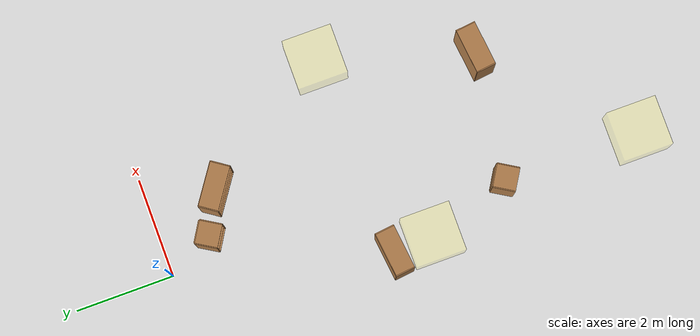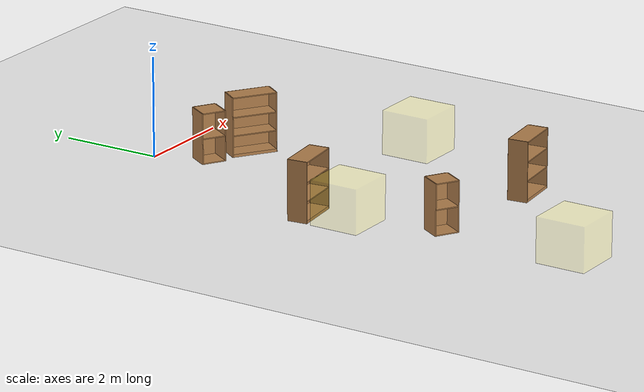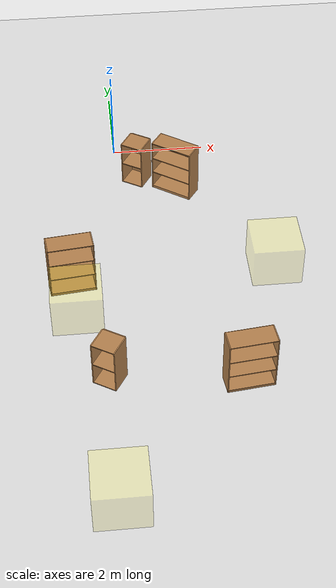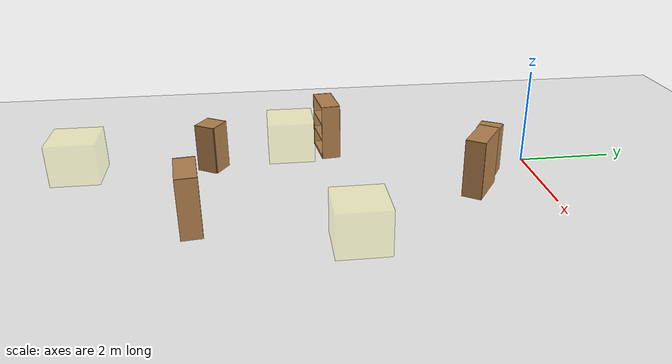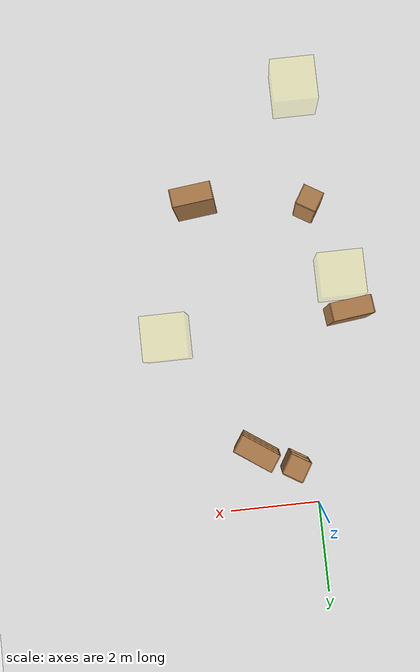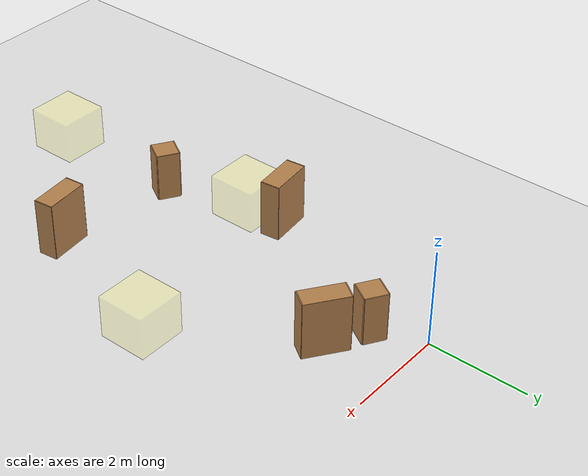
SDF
<sdf version="1.6">
 <world name="default">
  <light name="sun" type="directional">
   <pose>0 0 10 0 -0 0</pose>
   <diffuse>0.8 0.8 0.8 1</diffuse>
   <specular>0.2 0.2 0.2 1</specular>
   <attenuation>
    <range>1000</range>
    <constant>0.9</constant>
    <linear>0.01</linear>
    <quadratic>0.001</quadratic>
   </attenuation>
   <direction>-0.5 0.1 -0.9</direction>
  </light>
  <gravity>0 0 -9.8</gravity>
  <magnetic_field>6e-06 2.3e-05 -4.2e-05</magnetic_field>
  <atmosphere type="adiabatic"/>
  <physics name="default_physics" default="0" type="ode">
   <max_step_size>0.001</max_step_size>
   <real_time_factor>1</real_time_factor>
   <real_time_update_rate>1000</real_time_update_rate>
  </physics>
  <scene><ambient>0.4 0.4 0.4 1</ambient><background>0.7 0.7 0.7 1</background><shadows>1</shadows></scene>
  <audio><device>default</device></audio>
  <spherical_coordinates>
   <surface_model>EARTH_WGS84</surface_model>
   <latitude_deg>0</latitude_deg>
   <longitude_deg>0</longitude_deg>
   <elevation>0</elevation>
   <heading_deg>0</heading_deg>
  </spherical_coordinates>
  <model name="ground_plane">
   <static>1</static>
   <link name="link">
    <collision name="collision">
     <geometry><plane><normal>0 0 1</normal><size>100 100</size></plane></geometry>
     <surface>
      <contact><collide_bitmask>65535</collide_bitmask></contact>
      <friction><ode><mu>100</mu><mu2>50</mu2></ode></friction>
     </surface>
    </collision>
    <visual name="visual">
     <cast_shadows>0</cast_shadows>
     <geometry><plane><normal>0 0 1</normal><size>100 100</size></plane></geometry>
     <material>
      <script><uri>file://media/materials/scripts/gazebo.material</uri><name>Gazebo/Grey</name></script>
     </material>
    </visual>
   </link>
   <pose>0.215037 0.234206 0 0 -0 0</pose>
  </model>
  <model name="RegionEventBox_clone_0_clone">
   <static>1</static>
   <pose>3.01485 -4.05142 0 0 -0 0</pose>
   <link name="link">
    <visual name="visual">
     <transparency>0.75</transparency>
     <geometry><box><size>1 1 1.75</size></box></geometry>
     <material>
      <script><uri>file://media/materials/scripts/gazebo.material</uri><name>Gazebo/Yellow</name></script>
     </material>
    </visual>
   </link>
   <plugin name="region_event_box" filename="libRegionEventBoxPlugin.so">
    <event><name>model_in_region_event_box</name><type>inclusion</type><active>1</active></event>
   </plugin>
  </model>
  <model name="RegionEventBox_clone_0_clone_clone_0">
   <static>1</static>
   <pose>-0.45406 -9.48995 0 0 -0 0</pose>
   <link name="link">
    <visual name="visual">
     <transparency>0.75</transparency>
     <geometry><box><size>1 1 1.75</size></box></geometry>
     <material>
      <script><uri>file://media/materials/scripts/gazebo.material</uri><name>Gazebo/Yellow</name></script>
     </material>
    </visual>
   </link>
   <plugin name="region_event_box" filename="libRegionEventBoxPlugin.so">
    <event><name>model_in_region_event_box</name><type>inclusion</type><active>1</active></event>
   </plugin>
  </model>
  <model name="RegionEventBox_clone_0_clone_clone_0_clone_clone">
   <static>1</static>
   <pose>-1.01241 -5.02399 0 0 -0 0</pose>
   <link name="link">
    <visual name="visual">
     <transparency>0.75</transparency>
     <geometry><box><size>1 1 1.75</size></box></geometry>
     <material>
      <script><uri>file://media/materials/scripts/gazebo.material</uri><name>Gazebo/Yellow</name></script>
     </material>
    </visual>
   </link>
   <plugin name="region_event_box" filename="libRegionEventBoxPlugin.so">
    <event><name>model_in_region_event_box</name><type>inclusion</type><active>1</active></event>
   </plugin>
  </model>
  <model name="bookshelf_clone_clone_clone_clone">
   <static>1</static>
   <link name="link">
    <inertial><mass>1</mass></inertial>
    <collision name="back">
     <pose>0 0.005 0.6 0 -0 0</pose>
     <geometry><box><size>0.9 0.01 1.2</size></box></geometry>
    </collision>
    <visual name="visual1">
     <pose>0 0.005 0.6 0 -0 0</pose>
     <geometry><box><size>0.9 0.01 1.2</size></box></geometry>
     <material>
      <script><uri>file://media/materials/scripts/gazebo.material</uri><name>Gazebo/Wood</name></script>
     </material>
    </visual>
    <collision name="left_side">
     <pose>0.45 -0.195 0.6 0 -0 0</pose>
     <geometry><box><size>0.02 0.4 1.2</size></box></geometry>
    </collision>
    <visual name="visual2">
     <pose>0.45 -0.195 0.6 0 -0 0</pose>
     <geometry><box><size>0.02 0.4 1.2</size></box></geometry>
     <material>
      <script><uri>file://media/materials/scripts/gazebo.material</uri><name>Gazebo/Wood</name></script>
     </material>
    </visual>
    <collision name="right_side">
     <pose>-0.45 -0.195 0.6 0 -0 0</pose>
     <geometry><box><size>0.02 0.4 1.2</size></box></geometry>
    </collision>
    <visual name="visual3">
     <pose>-0.45 -0.195 0.6 0 -0 0</pose>
     <geometry><box><size>0.02 0.4 1.2</size></box></geometry>
     <material>
      <script><uri>file://media/materials/scripts/gazebo.material</uri><name>Gazebo/Wood</name></script>
     </material>
    </visual>
    <collision name="bottom">
     <pose>0 -0.195 0.03 0 -0 0</pose>
     <geometry><box><size>0.88 0.4 0.06</size></box></geometry>
    </collision>
    <visual name="visual4">
     <pose>0 -0.195 0.03 0 -0 0</pose>
     <geometry><box><size>0.88 0.4 0.06</size></box></geometry>
     <material>
      <script><uri>file://media/materials/scripts/gazebo.material</uri><name>Gazebo/Wood</name></script>
     </material>
    </visual>
    <collision name="top">
     <pose>0 -0.195 1.19 0 -0 0</pose>
     <geometry><box><size>0.88 0.4 0.02</size></box></geometry>
    </collision>
    <visual name="visual5">
     <pose>0 -0.195 1.19 0 -0 0</pose>
     <geometry><box><size>0.88 0.4 0.02</size></box></geometry>
     <material>
      <script><uri>file://media/materials/scripts/gazebo.material</uri><name>Gazebo/Wood</name></script>
     </material>
    </visual>
    <collision name="low_shelf">
     <pose>0 -0.195 0.43 0 -0 0</pose>
     <geometry><box><size>0.88 0.4 0.02</size></box></geometry>
    </collision>
    <visual name="visual6">
     <pose>0 -0.195 0.43 0 -0 0</pose>
     <geometry><box><size>0.88 0.4 0.02</size></box></geometry>
     <material>
      <script><uri>file://media/materials/scripts/gazebo.material</uri><name>Gazebo/Wood</name></script>
     </material>
    </visual>
    <collision name="high_shelf">
     <pose>0 -0.195 0.8 0 -0 0</pose>
     <geometry><box><size>0.88 0.4 0.02</size></box></geometry>
    </collision>
    <visual name="visual7">
     <pose>0 -0.195 0.8 0 -0 0</pose>
     <geometry><box><size>0.88 0.4 0.02</size></box></geometry>
     <material>
      <script><uri>file://media/materials/scripts/gazebo.material</uri><name>Gazebo/Wood</name></script>
     </material>
    </visual>
   </link>
   <pose>-1.10652 -4.01382 0 0 -0 0.112934</pose>
  </model>
  <model name="bookshelf_clone_clone_clone_clone_clone">
   <static>1</static>
   <link name="link">
    <inertial><mass>1</mass></inertial>
    <collision name="back">
     <pose>0 0.005 0.6 0 -0 0</pose>
     <geometry><box><size>0.9 0.01 1.2</size></box></geometry>
    </collision>
    <visual name="visual1">
     <pose>0 0.005 0.6 0 -0 0</pose>
     <geometry><box><size>0.9 0.01 1.2</size></box></geometry>
     <material>
      <script><uri>file://media/materials/scripts/gazebo.material</uri><name>Gazebo/Wood</name></script>
     </material>
    </visual>
    <collision name="left_side">
     <pose>0.45 -0.195 0.6 0 -0 0</pose>
     <geometry><box><size>0.02 0.4 1.2</size></box></geometry>
    </collision>
    <visual name="visual2">
     <pose>0.45 -0.195 0.6 0 -0 0</pose>
     <geometry><box><size>0.02 0.4 1.2</size></box></geometry>
     <material>
      <script><uri>file://media/materials/scripts/gazebo.material</uri><name>Gazebo/Wood</name></script>
     </material>
    </visual>
    <collision name="right_side">
     <pose>-0.45 -0.195 0.6 0 -0 0</pose>
     <geometry><box><size>0.02 0.4 1.2</size></box></geometry>
    </collision>
    <visual name="visual3">
     <pose>-0.45 -0.195 0.6 0 -0 0</pose>
     <geometry><box><size>0.02 0.4 1.2</size></box></geometry>
     <material>
      <script><uri>file://media/materials/scripts/gazebo.material</uri><name>Gazebo/Wood</name></script>
     </material>
    </visual>
    <collision name="bottom">
     <pose>0 -0.195 0.03 0 -0 0</pose>
     <geometry><box><size>0.88 0.4 0.06</size></box></geometry>
    </collision>
    <visual name="visual4">
     <pose>0 -0.195 0.03 0 -0 0</pose>
     <geometry><box><size>0.88 0.4 0.06</size></box></geometry>
     <material>
      <script><uri>file://media/materials/scripts/gazebo.material</uri><name>Gazebo/Wood</name></script>
     </material>
    </visual>
    <collision name="top">
     <pose>0 -0.195 1.19 0 -0 0</pose>
     <geometry><box><size>0.88 0.4 0.02</size></box></geometry>
    </collision>
    <visual name="visual5">
     <pose>0 -0.195 1.19 0 -0 0</pose>
     <geometry><box><size>0.88 0.4 0.02</size></box></geometry>
     <material>
      <script><uri>file://media/materials/scripts/gazebo.material</uri><name>Gazebo/Wood</name></script>
     </material>
    </visual>
    <collision name="low_shelf">
     <pose>0 -0.195 0.43 0 -0 0</pose>
     <geometry><box><size>0.88 0.4 0.02</size></box></geometry>
    </collision>
    <visual name="visual6">
     <pose>0 -0.195 0.43 0 -0 0</pose>
     <geometry><box><size>0.88 0.4 0.02</size></box></geometry>
     <material>
      <script><uri>file://media/materials/scripts/gazebo.material</uri><name>Gazebo/Wood</name></script>
     </material>
    </visual>
    <collision name="high_shelf">
     <pose>0 -0.195 0.8 0 -0 0</pose>
     <geometry><box><size>0.88 0.4 0.02</size></box></geometry>
    </collision>
    <visual name="visual7">
     <pose>0 -0.195 0.8 0 -0 0</pose>
     <geometry><box><size>0.88 0.4 0.02</size></box></geometry>
     <material>
      <script><uri>file://media/materials/scripts/gazebo.material</uri><name>Gazebo/Wood</name></script>
     </material>
    </visual>
   </link>
   <pose>2.05549 -6.83012 0 0 -0 0.112934</pose>
  </model>
  <model name="bookshelf_clone_clone">
   <static>1</static>
   <link name="link">
    <inertial><mass>1</mass></inertial>
    <collision name="back">
     <pose>0 0.005 0.6 0 -0 0</pose>
     <geometry><box><size>0.9 0.01 1.2</size></box></geometry>
    </collision>
    <visual name="visual1">
     <pose>0 0.005 0.6 0 -0 0</pose>
     <geometry><box><size>0.9 0.01 1.2</size></box></geometry>
     <material>
      <script><uri>file://media/materials/scripts/gazebo.material</uri><name>Gazebo/Wood</name></script>
     </material>
    </visual>
    <collision name="left_side">
     <pose>0.45 -0.195 0.6 0 -0 0</pose>
     <geometry><box><size>0.02 0.4 1.2</size></box></geometry>
    </collision>
    <visual name="visual2">
     <pose>0.45 -0.195 0.6 0 -0 0</pose>
     <geometry><box><size>0.02 0.4 1.2</size></box></geometry>
     <material>
      <script><uri>file://media/materials/scripts/gazebo.material</uri><name>Gazebo/Wood</name></script>
     </material>
    </visual>
    <collision name="right_side">
     <pose>-0.45 -0.195 0.6 0 -0 0</pose>
     <geometry><box><size>0.02 0.4 1.2</size></box></geometry>
    </collision>
    <visual name="visual3">
     <pose>-0.45 -0.195 0.6 0 -0 0</pose>
     <geometry><box><size>0.02 0.4 1.2</size></box></geometry>
     <material>
      <script><uri>file://media/materials/scripts/gazebo.material</uri><name>Gazebo/Wood</name></script>
     </material>
    </visual>
    <collision name="bottom">
     <pose>0 -0.195 0.03 0 -0 0</pose>
     <geometry><box><size>0.88 0.4 0.06</size></box></geometry>
    </collision>
    <visual name="visual4">
     <pose>0 -0.195 0.03 0 -0 0</pose>
     <geometry><box><size>0.88 0.4 0.06</size></box></geometry>
     <material>
      <script><uri>file://media/materials/scripts/gazebo.material</uri><name>Gazebo/Wood</name></script>
     </material>
    </visual>
    <collision name="top">
     <pose>0 -0.195 1.19 0 -0 0</pose>
     <geometry><box><size>0.88 0.4 0.02</size></box></geometry>
    </collision>
    <visual name="visual5">
     <pose>0 -0.195 1.19 0 -0 0</pose>
     <geometry><box><size>0.88 0.4 0.02</size></box></geometry>
     <material>
      <script><uri>file://media/materials/scripts/gazebo.material</uri><name>Gazebo/Wood</name></script>
     </material>
    </visual>
    <collision name="low_shelf">
     <pose>0 -0.195 0.43 0 -0 0</pose>
     <geometry><box><size>0.88 0.4 0.02</size></box></geometry>
    </collision>
    <visual name="visual6">
     <pose>0 -0.195 0.43 0 -0 0</pose>
     <geometry><box><size>0.88 0.4 0.02</size></box></geometry>
     <material>
      <script><uri>file://media/materials/scripts/gazebo.material</uri><name>Gazebo/Wood</name></script>
     </material>
    </visual>
    <collision name="high_shelf">
     <pose>0 -0.195 0.8 0 -0 0</pose>
     <geometry><box><size>0.88 0.4 0.02</size></box></geometry>
    </collision>
    <visual name="visual7">
     <pose>0 -0.195 0.8 0 -0 0</pose>
     <geometry><box><size>0.88 0.4 0.02</size></box></geometry>
     <material>
      <script><uri>file://media/materials/scripts/gazebo.material</uri><name>Gazebo/Wood</name></script>
     </material>
    </visual>
   </link>
   <pose>1.37416 -1.2147 0 0 0 -0.602231</pose>
  </model>
  <model name="cabinet_clone_clone">
   <static>1</static>
   <link name="cabinet_bottom_plate">
    <inertial>
     <pose>0 0 -1 0 -0 0</pose>
     <inertia><ixx>2.05</ixx><ixy>0</ixy><ixz>0</ixz><iyy>2.05</iyy><iyz>0</iyz><izz>2.05</izz></inertia>
     <mass>25</mass>
    </inertial>
    <collision name="cabinet_bottom_plate_geom">
     <pose>0 0 0.01 0 -0 0</pose>
     <geometry><box><size>0.45 0.45 0.02</size></box></geometry>
    </collision>
    <visual name="cabinet_bottom_plate_geom_visual">
     <pose>0 0 0.01 0 -0 0</pose>
     <geometry><box><size>0.45 0.45 0.02</size></box></geometry>
     <material>
      <script><uri>file://media/materials/scripts/gazebo.material</uri><name>Gazebo/Wood</name></script>
     </material>
    </visual>
    <collision name="cabinet_bottom_plate_geom_cabinet_back_plate">
     <pose>0.235 0 0.51 0 -0 0</pose>
     <geometry><box><size>0.02 0.45 1.02</size></box></geometry>
    </collision>
    <visual name="cabinet_bottom_plate_geom_cabinet_back_plate_visual">
     <pose>0.235 0 0.51 0 -0 0</pose>
     <geometry><box><size>0.02 0.45 1.02</size></box></geometry>
     <material>
      <script><uri>file://media/materials/scripts/gazebo.material</uri><name>Gazebo/Wood</name></script>
     </material>
    </visual>
    <collision name="cabinet_bottom_plate_geom_cabinet_left_plate">
     <pose>0 0.235 0.51 0 -0 0</pose>
     <geometry><box><size>0.45 0.02 1.02</size></box></geometry>
    </collision>
    <visual name="cabinet_bottom_plate_geom_cabinet_left_plate_visual">
     <pose>0 0.235 0.51 0 -0 0</pose>
     <geometry><box><size>0.45 0.02 1.02</size></box></geometry>
     <material>
      <script><uri>file://media/materials/scripts/gazebo.material</uri><name>Gazebo/Wood</name></script>
     </material>
    </visual>
    <collision name="cabinet_bottom_plate_geom_cabinet_middle_plate">
     <pose>0 0 0.51 0 -0 0</pose>
     <geometry><box><size>0.45 0.45 0.02</size></box></geometry>
    </collision>
    <visual name="cabinet_bottom_plate_geom_cabinet_middle_plate_visual">
     <pose>0 0 0.51 0 -0 0</pose>
     <geometry><box><size>0.45 0.45 0.02</size></box></geometry>
     <material>
      <script><uri>file://media/materials/scripts/gazebo.material</uri><name>Gazebo/Wood</name></script>
     </material>
    </visual>
    <collision name="cabinet_bottom_plate_geom_cabinet_right_plate">
     <pose>0 -0.235 0.51 0 -0 0</pose>
     <geometry><box><size>0.45 0.02 1.02</size></box></geometry>
    </collision>
    <visual name="cabinet_bottom_plate_geom_cabinet_right_plate_visual">
     <pose>0 -0.235 0.51 0 -0 0</pose>
     <geometry><box><size>0.45 0.02 1.02</size></box></geometry>
     <material>
      <script><uri>file://media/materials/scripts/gazebo.material</uri><name>Gazebo/Wood</name></script>
     </material>
    </visual>
    <collision name="cabinet_bottom_plate_geom_cabinet_top_plate">
     <pose>0 0 1.01 0 -0 0</pose>
     <geometry><box><size>0.45 0.45 0.02</size></box></geometry>
    </collision>
    <visual name="cabinet_bottom_plate_geom_cabinet_top_plate_visual">
     <pose>0 0 1.01 0 -0 0</pose>
     <geometry><box><size>0.45 0.45 0.02</size></box></geometry>
     <material>
      <script><uri>file://media/materials/scripts/gazebo.material</uri><name>Gazebo/Wood</name></script>
     </material>
    </visual>
   </link>
   <pose>0.452303 -0.960383 0 0 -0 1.0239</pose>
  </model>
  <model name="cabinet_clone_clone_clone">
   <static>1</static>
   <link name="cabinet_bottom_plate">
    <inertial>
     <pose>0 0 -1 0 -0 0</pose>
     <inertia><ixx>2.05</ixx><ixy>0</ixy><ixz>0</ixz><iyy>2.05</iyy><iyz>0</iyz><izz>2.05</izz></inertia>
     <mass>25</mass>
    </inertial>
    <collision name="cabinet_bottom_plate_geom">
     <pose>0 0 0.01 0 -0 0</pose>
     <geometry><box><size>0.45 0.45 0.02</size></box></geometry>
    </collision>
    <visual name="cabinet_bottom_plate_geom_visual">
     <pose>0 0 0.01 0 -0 0</pose>
     <geometry><box><size>0.45 0.45 0.02</size></box></geometry>
     <material>
      <script><uri>file://media/materials/scripts/gazebo.material</uri><name>Gazebo/Wood</name></script>
     </material>
    </visual>
    <collision name="cabinet_bottom_plate_geom_cabinet_back_plate">
     <pose>0.235 0 0.51 0 -0 0</pose>
     <geometry><box><size>0.02 0.45 1.02</size></box></geometry>
    </collision>
    <visual name="cabinet_bottom_plate_geom_cabinet_back_plate_visual">
     <pose>0.235 0 0.51 0 -0 0</pose>
     <geometry><box><size>0.02 0.45 1.02</size></box></geometry>
     <material>
      <script><uri>file://media/materials/scripts/gazebo.material</uri><name>Gazebo/Wood</name></script>
     </material>
    </visual>
    <collision name="cabinet_bottom_plate_geom_cabinet_left_plate">
     <pose>0 0.235 0.51 0 -0 0</pose>
     <geometry><box><size>0.45 0.02 1.02</size></box></geometry>
    </collision>
    <visual name="cabinet_bottom_plate_geom_cabinet_left_plate_visual">
     <pose>0 0.235 0.51 0 -0 0</pose>
     <geometry><box><size>0.45 0.02 1.02</size></box></geometry>
     <material>
      <script><uri>file://media/materials/scripts/gazebo.material</uri><name>Gazebo/Wood</name></script>
     </material>
    </visual>
    <collision name="cabinet_bottom_plate_geom_cabinet_middle_plate">
     <pose>0 0 0.51 0 -0 0</pose>
     <geometry><box><size>0.45 0.45 0.02</size></box></geometry>
    </collision>
    <visual name="cabinet_bottom_plate_geom_cabinet_middle_plate_visual">
     <pose>0 0 0.51 0 -0 0</pose>
     <geometry><box><size>0.45 0.45 0.02</size></box></geometry>
     <material>
      <script><uri>file://media/materials/scripts/gazebo.material</uri><name>Gazebo/Wood</name></script>
     </material>
    </visual>
    <collision name="cabinet_bottom_plate_geom_cabinet_right_plate">
     <pose>0 -0.235 0.51 0 -0 0</pose>
     <geometry><box><size>0.45 0.02 1.02</size></box></geometry>
    </collision>
    <visual name="cabinet_bottom_plate_geom_cabinet_right_plate_visual">
     <pose>0 -0.235 0.51 0 -0 0</pose>
     <geometry><box><size>0.45 0.02 1.02</size></box></geometry>
     <material>
      <script><uri>file://media/materials/scripts/gazebo.material</uri><name>Gazebo/Wood</name></script>
     </material>
    </visual>
    <collision name="cabinet_bottom_plate_geom_cabinet_top_plate">
     <pose>0 0 1.01 0 -0 0</pose>
     <geometry><box><size>0.45 0.45 0.02</size></box></geometry>
    </collision>
    <visual name="cabinet_bottom_plate_geom_cabinet_top_plate_visual">
     <pose>0 0 1.01 0 -0 0</pose>
     <geometry><box><size>0.45 0.45 0.02</size></box></geometry>
     <material>
      <script><uri>file://media/materials/scripts/gazebo.material</uri><name>Gazebo/Wood</name></script>
     </material>
    </visual>
   </link>
   <pose>-0.478631 -6.71743 0 0 -0 1.0239</pose>
  </model>
 </world>
</sdf>
